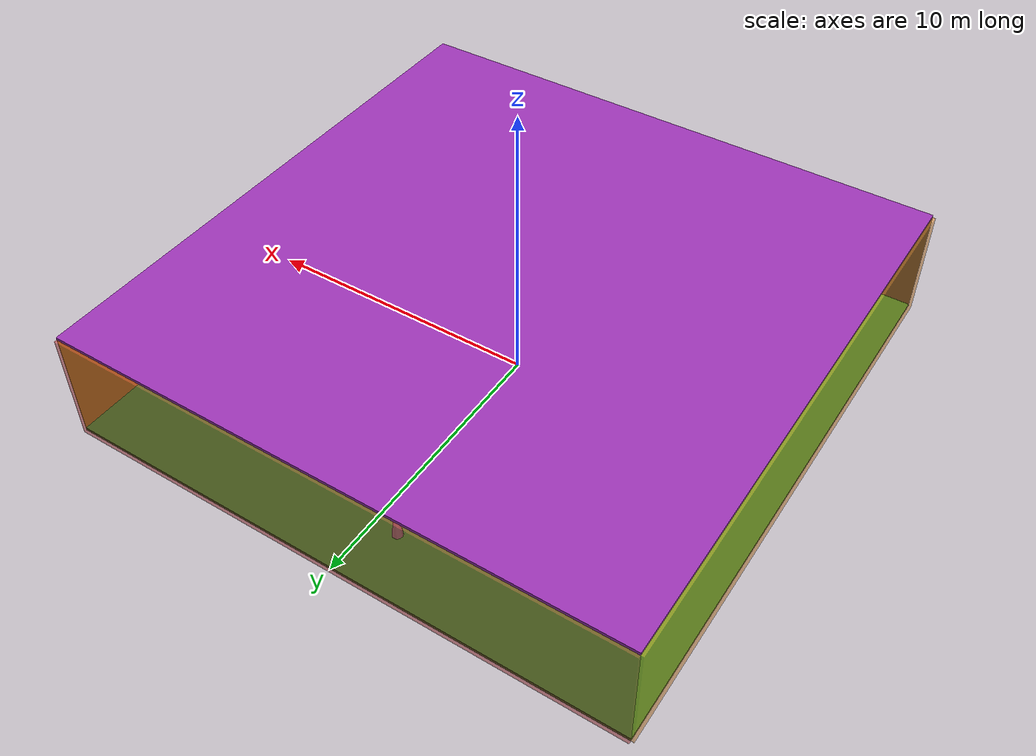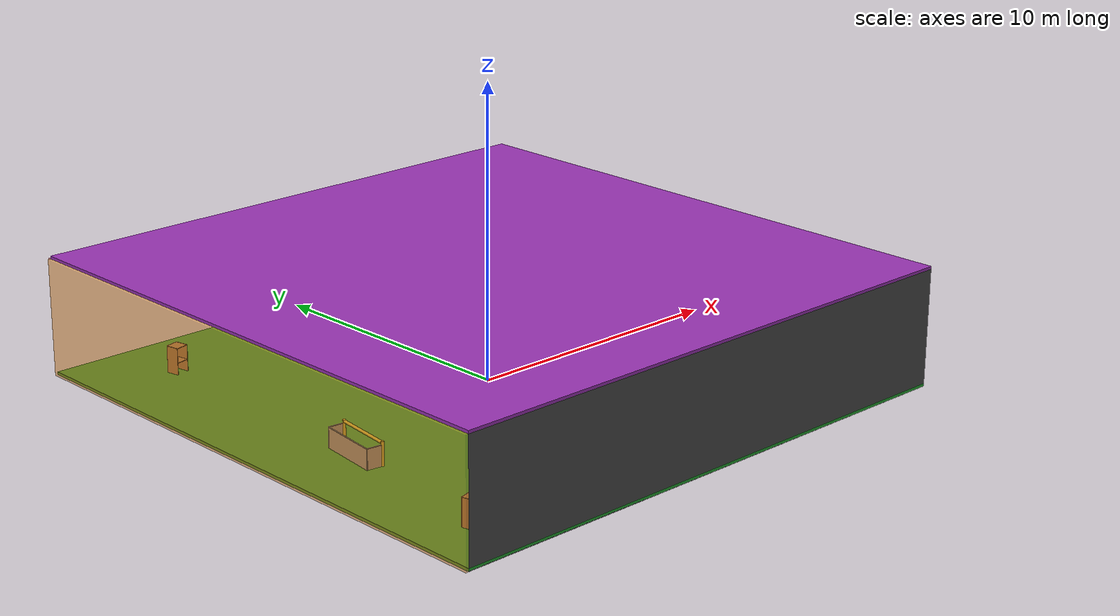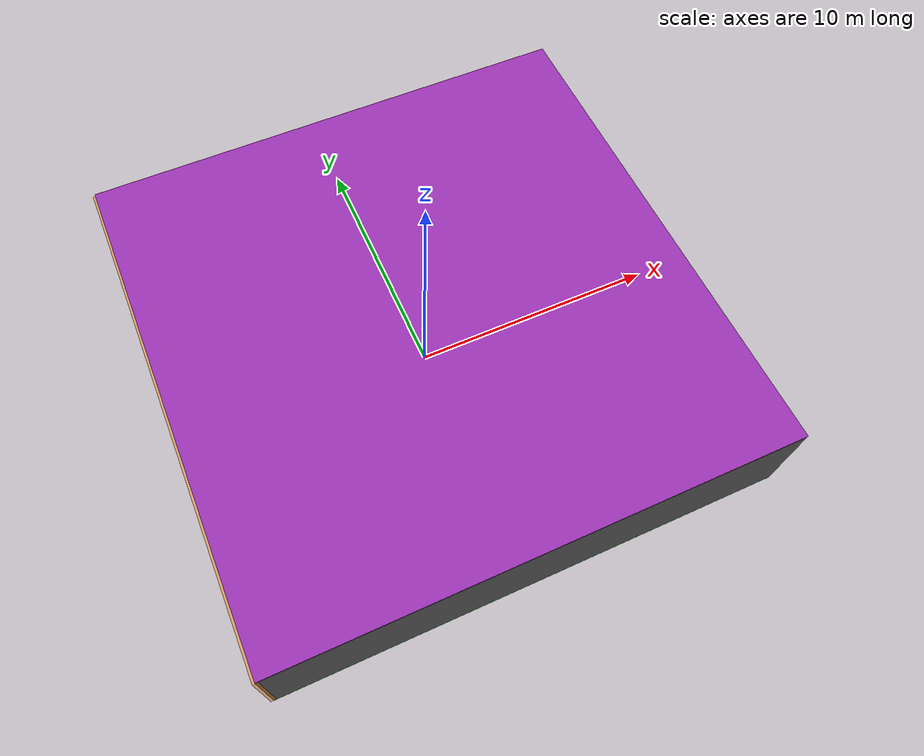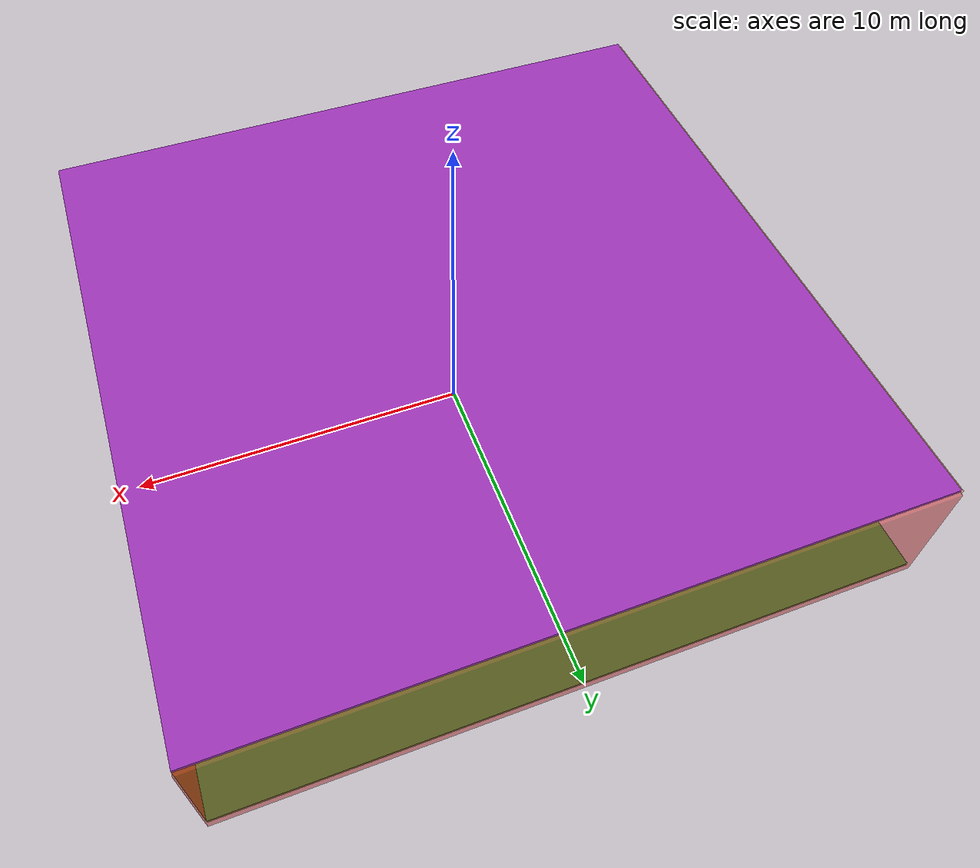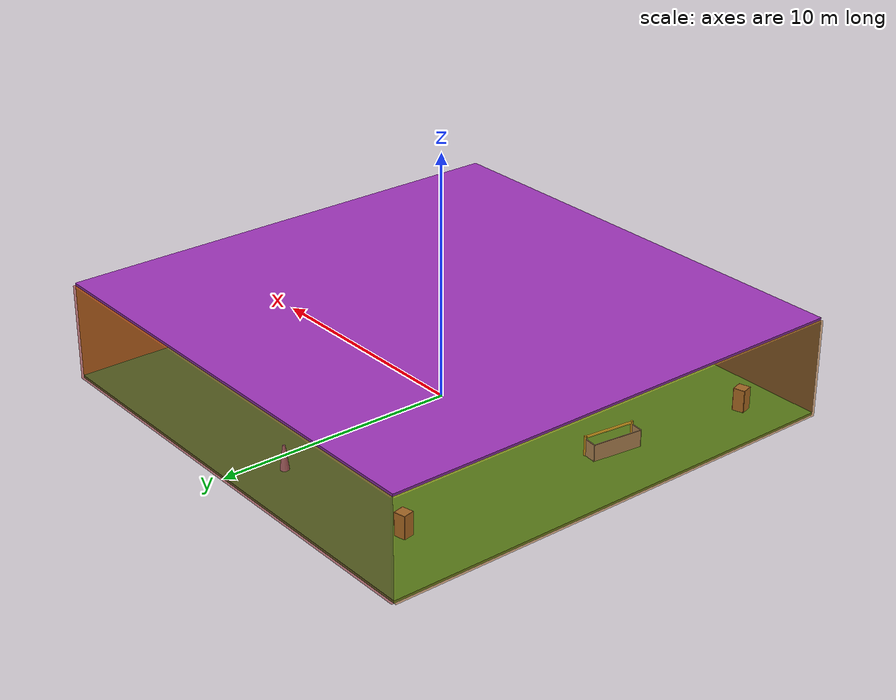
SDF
<sdf version="1.4">
 <world name="default">
  <physics type="ode">
   <max_step_size>0.001</max_step_size>
   <real_time_factor>1</real_time_factor>
   <real_time_update_rate>1000</real_time_update_rate>
   <gravity>0 0 -9.8</gravity>
  </physics>
  <scene><ambient>0.4 0.4 0.4 1</ambient><background>0.7 0.7 0.7 1</background><shadows>1</shadows></scene>
  <model name="Surrounding">
   <static>1</static>
   <link name="Ceiling">
    <collision name="Ceiling_Collision"><geometry><box><size>20 20 0.1</size></box></geometry></collision>
    <visual name="Ceiling_Visual">
     <geometry><box><size>20 20 0.1</size></box></geometry>
     <material>
      <script><uri>file://media/materials/scripts/gazebo.material</uri><name>Gazebo/PurpleGlow</name></script>
     </material>
    </visual>
    <pose>0 0 4.05 0 0 0</pose>
   </link>
   <link name="Wall_South">
    <collision name="Wall_South_Collision">
     <geometry><box><size>20 0 4</size></box></geometry>
     <pose>0 0 2 0 -0 0</pose>
    </collision>
    <visual name="Wall_South_Visual">
     <pose>0 0 2 0 -0 0</pose>
     <geometry><box><size>20 0 4</size></box></geometry>
     <material>
      <script><uri>file://media/materials/scripts/gazebo.material</uri><name>Gazebo/DarkGrey</name></script>
     </material>
    </visual>
    <velocity_decay><linear>0</linear><angular>0</angular></velocity_decay>
    <pose>0 -10 0 0 -0 0</pose>
   </link>
   <link name="Wall_East">
    <collision name="Wall_21_Collision">
     <geometry><box><size>20 0 4</size></box></geometry>
     <pose>0 0 2 0 -0 0</pose>
    </collision>
    <visual name="Wall_21_Visual">
     <pose>0 0 2 0 -0 0</pose>
     <geometry><box><size>20 0 4</size></box></geometry>
     <material>
      <script><uri>file://media/materials/scripts/gazebo.material</uri><name>Gazebo/ZincYellow</name></script>
     </material>
    </visual>
    <velocity_decay><linear>0</linear><angular>0</angular></velocity_decay>
    <pose>10 0 0 0 -0 1.5708</pose>
   </link>
   <link name="Wall_North">
    <collision name="Wall_22_Collision">
     <geometry><box><size>20 0.2 4</size></box></geometry>
     <pose>0 0 2 0 -0 0</pose>
    </collision>
    <visual name="Wall_22_Visual">
     <pose>0 0 2 0 -0 0</pose>
     <geometry><box><size>20 0.2 4</size></box></geometry>
     <material>
      <script><uri>file://media/materials/scripts/gazebo.material</uri><name>Gazebo/RedTransparent</name></script>
     </material>
    </visual>
    <velocity_decay><linear>0</linear><angular>0</angular></velocity_decay>
    <pose>0 10 0 0 -0 0</pose>
   </link>
   <link name="Wall_West">
    <collision name="Wall_23_Collision">
     <geometry><box><size>20 0.2 4</size></box></geometry>
     <pose>0 0 2 0 -0 0</pose>
    </collision>
    <visual name="Wall_23_Visual">
     <pose>0 0 2 0 -0 0</pose>
     <geometry><box><size>20 0.2 4</size></box></geometry>
     <material>
      <script>
       <uri>file://media/materials/scripts/gazebo.material</uri>
       <name>Gazebo/OrangeTransparent</name>
      </script>
     </material>
    </visual>
    <velocity_decay><linear>0</linear><angular>0</angular></velocity_decay>
    <pose>-10 0 0 0 0 -1.5708</pose>
   </link>
   <link name="Ground_link">
    <collision name="collision">
     <pose>0 0 .05 0 -0 0</pose>
     <geometry><box><size>20 20 0.1</size></box></geometry>
    </collision>
    <visual name="visual">
     <pose>0 0 .05 0 -0 0</pose>
     <geometry><box><size>20 20 0.1</size></box></geometry>
     <material>
      <script><uri>file://media/materials/scripts/gazebo.material</uri><name>Gazebo/GreenGlow</name></script>
     </material>
    </visual>
   </link>
   <static>1</static>
  </model>
  <spherical_coordinates>
   <surface_model>EARTH_WGS84</surface_model>
   <latitude_deg>0</latitude_deg>
   <longitude_deg>0</longitude_deg>
   <elevation>0</elevation>
   <heading_deg>0</heading_deg>
  </spherical_coordinates>
  <light name="lightball_0" type="diffuse">
   <diffuse>0.8 0.8 0.8 1</diffuse>
   <specular>0.2 0.2 0.2 1</specular>
   <attenuation>
    <range>100</range>
    <constant>0.7</constant>
    <linear>0.01</linear>
    <quadratic>0.001</quadratic>
   </attenuation>
   <direction>-0.5 0.1 -0.9</direction>
   <pose>9.1347638075 0.357613783799 0.773164902593 0 0 0</pose>
  </light>
  <light name="lightball_1" type="diffuse">
   <diffuse>0.8 0.8 0.8 1</diffuse>
   <specular>0.2 0.2 0.2 1</specular>
   <attenuation>
    <range>100</range>
    <constant>0.7</constant>
    <linear>0.01</linear>
    <quadratic>0.001</quadratic>
   </attenuation>
   <direction>-0.5 0.1 -0.9</direction>
   <pose>2.96237558069 3.58855645225 0.679301096097 0 0 0</pose>
  </light>
  <light name="lightball_2" type="diffuse">
   <diffuse>0.8 0.8 0.8 1</diffuse>
   <specular>0.2 0.2 0.2 1</specular>
   <attenuation>
    <range>100</range>
    <constant>0.7</constant>
    <linear>0.01</linear>
    <quadratic>0.001</quadratic>
   </attenuation>
   <direction>-0.5 0.1 -0.9</direction>
   <pose>-2.03314936478 -6.36557616086 1.72364788613 0 0 0</pose>
  </light>
  <include><uri>model://cabinet</uri><pose>-8.09383923655 -8.10059226288 0 0 0 1.83098653721</pose></include>
  <include>
   <uri>model://robocup_3Dsim_goal</uri>
   <pose>-7.09084609585 -2.14506549897 0 0 0 3.02185477097</pose>
  </include>
  <include><uri>model://cabinet</uri><pose>-7.08795456844 7.33139819282 0 0 0 1.78105757034</pose></include>
  <include>
   <uri>model://construction_cone</uri>
   <pose>-0.943514023582 7.98527063286 0 0 0 1.57736128809</pose>
  </include>
  <include><uri>model://cabinet</uri><pose>1.97899252407 1.61888563419 0 0 0 1.53517466356</pose></include>
  <include><uri>model://cabinet</uri><pose>3.82081208732 -1.76129514049 0 0 0 3.03195013087</pose></include>
  <include>
   <uri>model://robocup_3Dsim_goal</uri>
   <pose>5.27762148597 2.04046983883 0 0 0 0.518374629521</pose>
  </include>
  <include><uri>model://table</uri><pose>8.07681760618 -7.27018526523 0 0 0 1.13637322852</pose></include>
  <include>
   <uri>model://robocup_3Dsim_goal</uri>
   <pose>8.07635463881 -5.24444212576 0 0 0 2.21068941892</pose>
  </include>
  <include><uri>model://cabinet</uri><pose>7.40216535507 -0.806907191199 0 0 0 0.50214157837</pose></include>
 </world>
</sdf>

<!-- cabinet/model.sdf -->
<sdf version="1.5">
  <model name="cabinet">
    <static>true</static>
    <link name="cabinet_bottom_plate">
      <inertial>
        <pose>0 0 -1 0 0 0</pose>
        <inertia>
          <ixx>2.050000</ixx>
          <ixy>0</ixy>
          <ixz>0</ixz>
          <iyy>2.050000</iyy>
          <iyz>0</iyz>
          <izz>2.050000</izz>
        </inertia>
        <mass>25.000000</mass>
      </inertial>
      <collision name="cabinet_bottom_plate_geom">
        <pose>0 0 0.010000 0 0 0</pose>
        <geometry>
          <box>
            <size>0.450000 0.450000 0.020000</size>
          </box>
        </geometry>
      </collision>
      <visual name="cabinet_bottom_plate_geom_visual">
        <pose>0 0 0.010000 0 0 0</pose>
        <geometry>
          <box>
            <size>0.450000 0.450000 0.020000</size>
          </box>
        </geometry>
        <material>
          <script>
            <uri>model://media/materials/scripts/gazebo.material</uri>
            <name>Gazebo/Wood</name>
          </script>
        </material>
      </visual>
      <collision name="cabinet_bottom_plate_geom_cabinet_back_plate">
        <pose>0.235000 0 0.510000 0 0 0</pose>
        <geometry>
          <box>
            <size>0.020000 0.450000 1.020000</size>
          </box>
        </geometry>
      </collision>
      <visual name="cabinet_bottom_plate_geom_cabinet_back_plate_visual">
        <pose>0.235000 0 0.510000 0 0 0</pose>
        <geometry>
          <box>
            <size>0.020000 0.450000 1.020000</size>
          </box>
        </geometry>
        <material>
          <script>
            <uri>model://media/materials/scripts/gazebo.material</uri>
            <name>Gazebo/Wood</name>
          </script>
        </material>
      </visual>
      <collision name="cabinet_bottom_plate_geom_cabinet_left_plate">
        <pose>0 0.235000 0.510000 0 0 0</pose>
        <geometry>
          <box>
            <size>0.450000 0.020000 1.020000</size>
          </box>
        </geometry>
      </collision>
      <visual name="cabinet_bottom_plate_geom_cabinet_left_plate_visual">
        <pose>0 0.235000 0.510000 0 0 0</pose>
        <geometry>
          <box>
            <size>0.450000 0.020000 1.020000</size>
          </box>
        </geometry>
        <material>
          <script>
            <uri>model://media/materials/scripts/gazebo.material</uri>
            <name>Gazebo/Wood</name>
          </script>
        </material>
      </visual>
      <collision name="cabinet_bottom_plate_geom_cabinet_middle_plate">
        <pose>0 0 0.510000 0 0 0</pose>
        <geometry>
          <box>
            <size>0.450000 0.450000 0.020000</size>
          </box>
        </geometry>
      </collision>
      <visual name="cabinet_bottom_plate_geom_cabinet_middle_plate_visual">
        <pose>0 0 0.510000 0 0 0</pose>
        <geometry>
          <box>
            <size>0.450000 0.450000 0.020000</size>
          </box>
        </geometry>
        <material>
          <script>
            <uri>model://media/materials/scripts/gazebo.material</uri>
            <name>Gazebo/Wood</name>
          </script>
        </material>
      </visual>
      <collision name="cabinet_bottom_plate_geom_cabinet_right_plate">
        <pose>0 -0.235000 0.510000 0 0 0</pose>
        <geometry>
          <box>
            <size>0.450000 0.020000 1.020000</size>
          </box>
        </geometry>
      </collision>
      <visual name="cabinet_bottom_plate_geom_cabinet_right_plate_visual">
        <pose>0 -0.235000 0.510000 0 0 0</pose>
        <geometry>
          <box>
            <size>0.450000 0.020000 1.020000</size>
          </box>
        </geometry>
        <material>
          <script>
            <uri>model://media/materials/scripts/gazebo.material</uri>
            <name>Gazebo/Wood</name>
          </script>
        </material>
      </visual>
      <collision name="cabinet_bottom_plate_geom_cabinet_top_plate">
        <pose>0 0 1.010000 0 0 0</pose>
        <geometry>
          <box>
            <size>0.450000 0.450000 0.020000</size>
          </box>
        </geometry>
      </collision>
      <visual name="cabinet_bottom_plate_geom_cabinet_top_plate_visual">
        <pose>0 0 1.010000 0 0 0</pose>
        <geometry>
          <box>
            <size>0.450000 0.450000 0.020000</size>
          </box>
        </geometry>
        <material>
          <script>
            <uri>model://media/materials/scripts/gazebo.material</uri>
            <name>Gazebo/Wood</name>
          </script>
        </material>
      </visual>
    </link>
  </model>
</sdf>

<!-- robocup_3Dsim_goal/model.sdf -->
<sdf version="1.5">
  <model name="robocup_3d_goal">
    <static>true</static>
    <link name="left_post">
      <pose>0 1.05 0.45 0 0 0</pose>
      <collision name="collision">
        <geometry>
          <cylinder>
            <radius>0.05</radius>
            <length>0.9</length>
          </cylinder>
        </geometry>
      </collision>
      <visual name="visual">
        <geometry>
          <cylinder>
            <radius>0.05</radius>
            <length>0.9</length>
          </cylinder>
        </geometry>
        <material>
          <script>
            <uri>file://media/materials/scripts/gazebo.material</uri>
            <name>Gazebo/ZincYellow</name>
          </script>
        </material>
      </visual>
    </link>
    <link name="left_support_horiz_lower">
      <pose>0.30 1.05 0.01 0 0 0</pose>
      <collision name="collision">
        <geometry>
          <box>
            <size>0.50 0.02 0.02</size>
          </box>
        </geometry>
      </collision>
      <visual name="visual">
        <geometry>
          <box>
            <size>0.50 0.02 0.02</size>
          </box>
        </geometry>
        <material>
          <script>
            <uri>file://media/materials/scripts/gazebo.material</uri>
            <name>Gazebo/White</name>
          </script>
        </material>
      </visual>
    </link>
    <link name="left_support_horiz_upper">
      <pose>0.30 1.05 0.79 0 0 0</pose>
      <collision name="collision">
        <geometry>
          <box>
            <size>0.50 0.02 0.02</size>
          </box>
        </geometry>
      </collision>
      <visual name="visual">
        <geometry>
          <box>
            <size>0.50 0.02 0.02</size>
          </box>
        </geometry>
        <material>
          <script>
            <uri>file://media/materials/scripts/gazebo.material</uri>
            <name>Gazebo/White</name>
          </script>
        </material>
      </visual>
    </link>
    <link name="left_support_vertical">
      <pose>0.56 1.05 0.4 0 1.5708 0</pose>
      <collision name="collision">
        <geometry>
          <box>
            <size>0.80 0.02 0.02</size>
          </box>
        </geometry>
      </collision>
      <visual name="visual">
        <geometry>
          <box>
            <size>0.80 0.02 0.02</size>
          </box>
        </geometry>
        <material>
          <script>
            <uri>file://media/materials/scripts/gazebo.material</uri>
            <name>Gazebo/White</name>
          </script>
        </material>
      </visual>
    </link>
    <link name="right_support_horiz_lower">
      <pose>0.30 -1.05 0.01 0 0 0</pose>
      <collision name="collision">
        <geometry>
          <box>
            <size>0.50 0.02 0.02</size>
          </box>
        </geometry>
      </collision>
      <visual name="visual">
        <geometry>
          <box>
            <size>0.50 0.02 0.02</size>
          </box>
        </geometry>
        <material>
          <script>
            <uri>file://media/materials/scripts/gazebo.material</uri>
            <name>Gazebo/White</name>
          </script>
        </material>
      </visual>
    </link>
    <link name="right_support_horiz_upper">
      <pose>0.30 -1.05 0.79 0 0 0</pose>
      <collision name="collision">
        <geometry>
          <box>
            <size>0.50 0.02 0.02</size>
          </box>
        </geometry>
      </collision>
      <visual name="visual">
        <geometry>
          <box>
            <size>0.50 0.02 0.02</size>
          </box>
        </geometry>
        <material>
          <script>
            <uri>file://media/materials/scripts/gazebo.material</uri>
            <name>Gazebo/White</name>
          </script>
        </material>
      </visual>
    </link>
    <link name="right_support_vertical">
      <pose>0.56 -1.05 0.4 0 1.5708 0</pose>
      <collision name="collision">
        <geometry>
          <box>
            <size>0.80 0.02 0.02</size>
          </box>
        </geometry>
      </collision>
      <visual name="visual">
        <geometry>
          <box>
            <size>0.80 0.02 0.02</size>
          </box>
        </geometry>
        <material>
          <script>
            <uri>file://media/materials/scripts/gazebo.material</uri>
            <name>Gazebo/White</name>
          </script>
        </material>
      </visual>
    </link>
    <link name="center_support_horiz_lower">
      <pose>0.56 0 0.01 0 1.5708 0</pose>
      <collision name="collision">
        <geometry>
          <box>
            <size>0.02 2.08 0.02</size>
          </box>
        </geometry>
      </collision>
      <visual name="visual">
        <geometry>
          <box>
            <size>0.02 2.08 0.02</size>
          </box>
        </geometry>
        <material>
          <script>
            <uri>file://media/materials/scripts/gazebo.material</uri>
            <name>Gazebo/White</name>
          </script>
        </material>
      </visual>
    </link>
    <link name="center_support_horiz_upper">
      <pose>0.56 0 0.79 0 1.5708 0</pose>
      <collision name="collision">
        <geometry>
          <box>
            <size>0.02 2.08 0.02</size>
          </box>
        </geometry>
      </collision>
      <visual name="visual">
        <geometry>
          <box>
            <size>0.02 2.08 0.02</size>
          </box>
        </geometry>
        <material>
          <script>
            <uri>file://media/materials/scripts/gazebo.material</uri>
            <name>Gazebo/White</name>
          </script>
        </material>
      </visual>
    </link>
    <link name="right_post">
      <pose>0 -1.05 0.45 0 0 0</pose>
      <collision name="collision">
        <geometry>
          <cylinder>
            <radius>0.05</radius>
            <length>0.9</length>
          </cylinder>
        </geometry>
      </collision>
      <visual name="visual">
        <geometry>
          <cylinder>
            <radius>0.05</radius>
            <length>0.9</length>
          </cylinder>
        </geometry>
        <material>
          <script>
            <uri>file://media/materials/scripts/gazebo.material</uri>
            <name>Gazebo/ZincYellow</name>
          </script>
        </material>
      </visual>
    </link>
    <link name="crossbar">
      <pose>0 0 0.85 1.57 1.57 0</pose>
      <collision name="collision">
        <geometry>
          <cylinder>
            <radius>0.05</radius>
            <length>2.0</length>
          </cylinder>
        </geometry>
      </collision>
      <visual name="visual">
        <geometry>
          <cylinder>
            <radius>0.05</radius>
            <length>2.0</length>
          </cylinder>
        </geometry>
        <material>
          <script>
            <uri>file://media/materials/scripts/gazebo.material</uri>
            <name>Gazebo/ZincYellow</name>
          </script>
        </material>
      </visual>
    </link>
    <link name="center_net">
      <pose>0.56 0 0.40 0 0 0</pose>
      <collision name="collision">
        <geometry>
          <box>
            <size>0.01 2.1 0.80</size>
          </box>
        </geometry>
      </collision>
      <visual name="visual">
        <geometry>
          <box>
            <size>0.01 2.1 0.80</size>
          </box>
        </geometry>
        <material>
          <script>
            <uri>model://../model_source/models/robocup09_spl_field/materials/scripts/</uri>
            <uri>model://../model_source/models/robocup09_spl_field/materials/textures/</uri>
            <name>RoboCup/Net</name>
          </script>
        </material>
      </visual>
    </link>
    <link name="left_net">
      <pose>0.30 1.05 0.40 0 0 0</pose>
      <collision name="collision">
        <geometry>
          <box>
            <size>0.50 0.01 0.76</size>
          </box>
        </geometry>
      </collision>
      <visual name="visual">
        <geometry>
          <box>
            <size>0.50 0.01 0.76</size>
          </box>
        </geometry>
        <material>
          <script>
            <uri>model://../model_source/models/robocup09_spl_field/materials/scripts/</uri>
            <uri>model://../model_source/models/robocup09_spl_field/materials/textures/</uri>
            <name>RoboCup/Net</name>
          </script>
        </material>
      </visual>
    </link>
    <link name="right_net">
      <pose>0.30 -1.05 0.40 0 0 0</pose>
      <collision name="collision">
        <geometry>
          <box>
            <size>0.50 0.01 0.76</size>
          </box>
        </geometry>
      </collision>
      <visual name="visual">
        <geometry>
          <box>
            <size>0.50 0.01 0.76</size>
          </box>
        </geometry>
        <material>
          <script>
            <uri>model://../model_source/models/robocup09_spl_field/materials/scripts/</uri>
            <uri>model://../model_source/models/robocup09_spl_field/materials/textures/</uri>
            <name>RoboCup/Net</name>
          </script>
        </material>
      </visual>
    </link>
  </model>
</sdf>

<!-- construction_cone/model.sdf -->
<sdf version="1.5">
  <model name="Construction Cone">
    <link name="link">
      <collision name="collision">
        <geometry>
          <mesh>
            <scale>10 10 10</scale>
            <uri>file://isr-testbed/construction_cone/meshes/construction_cone.dae</uri>
          </mesh>
        </geometry>
      </collision>
      <visual name="visual">
        <geometry>
          <mesh>
            <scale>10 10 10</scale>
            <uri>file://isr-testbed/construction_cone/meshes/construction_cone.dae</uri>
          </mesh>
        </geometry>
      </visual>
    </link>
  </model>
</sdf>

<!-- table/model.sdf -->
<sdf version="1.5">
  <model name="table">
    <static>true</static>
    <link name="link">
      <collision name="surface">
        <pose>0 0 1.0 0 0 0</pose>
        <geometry>
          <box>
            <size>1.5 0.8 0.03</size>
          </box>
        </geometry>
        <surface>
          <friction>
            <ode>
              <mu>0.6</mu>
              <mu2>0.6</mu2>
            </ode>
          </friction>
        </surface>
      </collision>
      <visual name="visual1">
        <pose>0 0 1.0 0 0 0</pose>
        <geometry>
          <box>
            <size>1.5 0.8 0.03</size>
          </box>
        </geometry>
        <material>
          <script>
            <uri>model://media/materials/scripts/gazebo.material</uri>
            <name>Gazebo/Wood</name>
          </script>
        </material>
      </visual>
      <collision name="front_left_leg">
        <pose>0.68 0.38 0.5 0 0 0</pose>
        <geometry>
          <cylinder>
            <radius>0.02</radius>
            <length>1.0</length>
          </cylinder>
        </geometry>
      </collision>
      <visual name="front_left_leg">
        <pose>0.68 0.38 0.5 0 0 0</pose>
        <geometry>
          <cylinder>
            <radius>0.02</radius>
            <length>1.0</length>
          </cylinder>
        </geometry>
        <material>
          <script>
            <uri>model://media/materials/scripts/gazebo.material</uri>
            <name>Gazebo/Grey</name>
          </script>
        </material>
      </visual>
      <collision name="front_right_leg">
        <pose>0.68 -0.38 0.5 0 0 0</pose>
        <geometry>
          <cylinder>
            <radius>0.02</radius>
            <length>1.0</length>
          </cylinder>
        </geometry>
      </collision>
      <visual name="front_right_leg">
        <pose>0.68 -0.38 0.5 0 0 0</pose>
        <geometry>
          <cylinder>
            <radius>0.02</radius>
            <length>1.0</length>
          </cylinder>
        </geometry>
        <material>
          <script>
            <uri>model://media/materials/scripts/gazebo.material</uri>
            <name>Gazebo/Grey</name>
          </script>
        </material>
      </visual>
      <collision name="back_right_leg">
        <pose>-0.68 -0.38 0.5 0 0 0</pose>
        <geometry>
          <cylinder>
            <radius>0.02</radius>
            <length>1.0</length>
          </cylinder>
        </geometry>
      </collision>
      <visual name="back_right_leg">
        <pose>-0.68 -0.38 0.5 0 0 0</pose>
        <geometry>
          <cylinder>
            <radius>0.02</radius>
            <length>1.0</length>
          </cylinder>
        </geometry>
        <material>
          <script>
            <uri>model://media/materials/scripts/gazebo.material</uri>
            <name>Gazebo/Grey</name>
          </script>
        </material>
      </visual>
      <collision name="back_left_leg">
        <pose>-0.68 0.38 0.5 0 0 0</pose>
        <geometry>
          <cylinder>
            <radius>0.02</radius>
            <length>1.0</length>
          </cylinder>
        </geometry>
      </collision>
      <visual name="back_left_leg">
        <pose>-0.68 0.38 0.5 0 0 0</pose>
        <geometry>
          <cylinder>
            <radius>0.02</radius>
            <length>1.0</length>
          </cylinder>
        </geometry>
        <material>
          <script>
            <uri>model://media/materials/scripts/gazebo.material</uri>
            <name>Gazebo/Grey</name>
          </script>
        </material>
      </visual>
    </link>
  </model>
</sdf>
